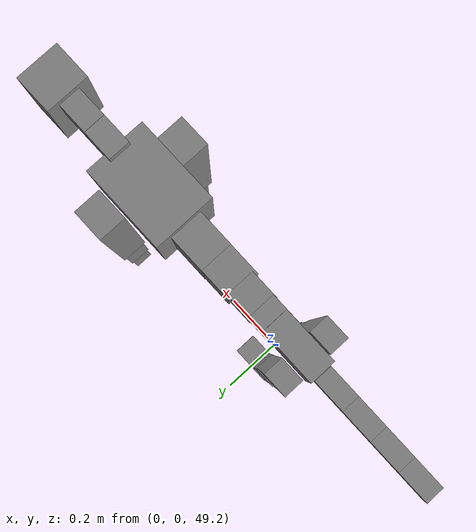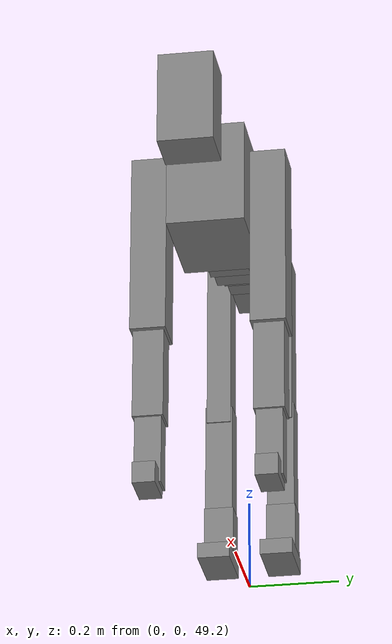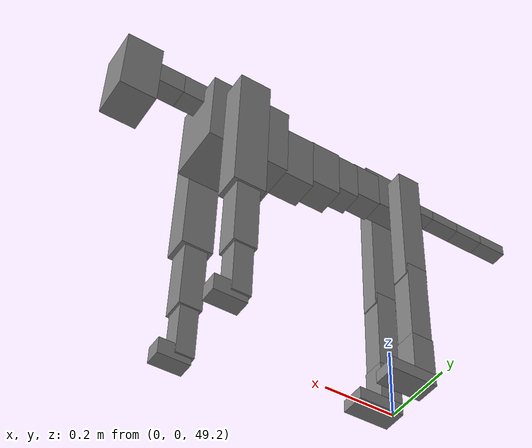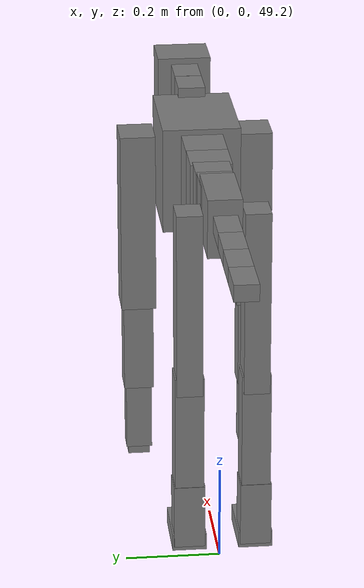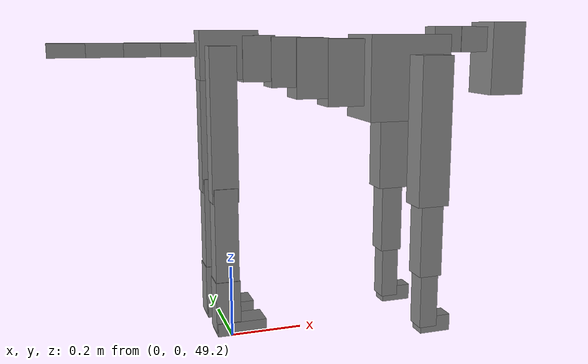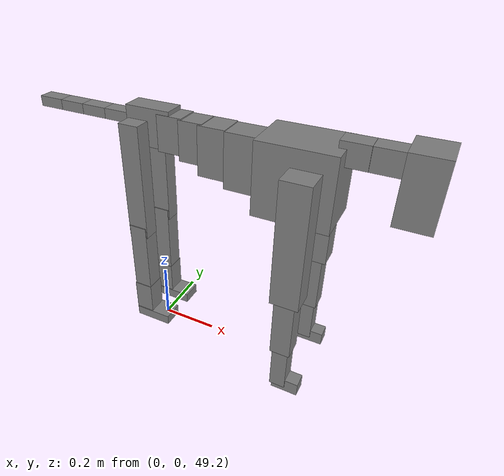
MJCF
<mujoco model="dog">

    <default>
        <joint armature="0.02" stiffness="1" damping="0.2" limited="true"/>
        <geom condim="3" friction="1 0.05 0.05" margin="0.01"/>
        <motor ctrllimited="true" ctrlrange="-1.0 1.0" forcelimited="true" gear="50"/>
    </default>

    <compiler inertiafromgeom="true" angle="radian"/>

    <option timestep="0.016" iterations="50" tolerance="1e-10" solver="Newton" jacobian="dense" cone="pyramidal"/>

    <size nconmax="20000" njmax="60000" nstack="5000000"/>
    <visual>
        <map force="0.1" zfar="30"/>
        <rgba haze="0.15 0.25 0.35 1"/>
        <quality shadowsize="2048"/>
        <global offwidth="800" offheight="800"/>
    </visual>

    <asset>
        <texture type="skybox" builtin="gradient" rgb1="0.3 0.5 0.7" rgb2="0 0 0" width="512" height="512"/>
        <texture name="texplane" type="2d" builtin="checker" rgb1=".2 .3 .4" rgb2=".1 0.15 0.2" width="512" height="512"
                 mark="cross" markrgb=".8 .8 .8"/>
        <texture name="texgeom" type="cube" builtin="flat" mark="cross" width="127" height="1278" rgb1="0.8 0.6 0.4"
                 rgb2="0.8 0.6 0.4" markrgb="1 1 1" random="0.01"/>

        <material name="matplane" reflectance="0.3" texture="texplane" texrepeat="1 1" texuniform="true"/>
        <material name="matgeom" texture="texgeom" texuniform="true" rgba="0.8 0.6 .4 1"/>
    </asset>

    <worldbody>
        <geom name="floor" pos="0 0 0" size="0 0 .25" type="plane" material="matplane" condim="3"/>

        <light directional="false" diffuse=".2 .2 .2" specular="0 0 0" pos="0 0 5" dir="0 0 -1" castshadow="false"/>
        <light mode="targetbodycom" target="torso" directional="false" diffuse=".8 .8 .8" specular="0.3 0.3 0.3"
               pos="0 0 4.0" dir="0 0 -1"/>

        <body name="root" pos="0 0 50">
            <freejoint name="root_1"/>
            <geom type="box" pos="0 0 -0.02" size="0.0774  0.0358  0.063" density="2030"/>

            <body name="spine1" pos="0.054 0 0">
                <joint name="spine1_y" axis="0 1 0" range="0 0.7" limited="true"/>
                <geom type="box" pos="0.02375 0 -0.03" size="0.04375  0.0375  0.05985" density="2030"/>

                <body name="spine2" pos="0.0612 0 0">
                    <joint name="spine2_y" axis="0 1 0" range="-0.15 0.15" limited="true"/>
                    <geom type="box" pos="0.03555  0  -0.04" size="0.04055  0.039  0.06615" density="2030"/>

                    <body name="spine3" pos="0.0730 0 0">
                        <joint name="spine3_y" axis="0 1 0" range="-0.15 0.15" limited="true"/>
                        <geom type="box" pos="0.03555  0  -0.057" size="0.04555  0.0445  0.081" density="2030"/>

                        <body name="spine4" pos="0.0780 0 0">
                            <joint name="spine4_y" axis="0 1 0" range="-0.15 0.15" limited="true"/>
                            <geom type="box" pos="0.05265  0  -0.07" size="0.05265  0.045  0.09135" density="2030"/>

                            <body name="torso" pos="0.1082 0 0">
                                <joint name="torso_y" axis="0 1 0" range="-0.15 0.15" limited="true"/>
                                <geom type="box" pos="0.11925  0  -0.085" size="0.11925  0.085  0.11745"
                                      density="2030"/>

                                <body name="neck1" pos="0.2160  0   0.0180">
                                    <joint name="neck1_y" axis="0 1 0" range="-1.2  -1" limited="true"/>
                                    <geom type="box" pos="0.0423  0  0" size="0.0423  0.03  0.036" density="2325"/>

                                    <body name="neck2" pos="0.0853  0  0">
                                        <joint name="neck2_y" axis="0 1 0" range="0.1  0" limited="true"/>
                                        <geom type="box" pos="0.0423  0  0" size="0.0423  0.03  0.036" density="2325"/>

                                        <body name="head" pos="0.0853  0  0">
                                            <joint name="head_y" axis="0 1 0" range="-0.3  -0.2" limited="true"/>
                                            <geom type="box" pos="0.0531  0  -0.055" size="0.0531  0.06  0.1044"
                                                  density="4030"/>

                                        </body>
                                    </body>
                                </body>

                                <body name="front_shoulder" pos="0.156  0   -0.0480">
                                    <joint name="front_shoulder_y" axis="0 1 0" range="-1 1.5" limited="true"/>
                                    <geom type="box" pos="0 0.13 -0.1779" size="0.0455  0.0389  0.2046" density="1158"/>
                                    <geom type="box" pos="0 -0.13 -0.1779" size="0.0455  0.0389  0.2046"
                                          density="1158"/>

                                    <body name="front_elbow" pos="0  0  -0.3558">
                                        <joint name="front_elbow_y" axis="0 1 0" range="-2 0" limited="true"/>
                                        <geom type="box" pos="0 0.13 -0.1137" size="0.0327  0.0334  0.1137"
                                              density="1081"/>
                                        <geom type="box" pos="0 -0.13 -0.1137" size="0.0327  0.0334  0.1137"
                                              density="1081"/>

                                        <body name="front_wrist" pos="0  0  -0.2274">
                                            <joint name="front_wrist_y" axis="0 1 0" range="-0.2 0" limited="true"/>
                                            <geom type="box" pos="0 0.13 -0.0689" size="0.0261  0.0290  0.0820"
                                                  density="1664"/>
                                            <geom type="box" pos="0 -0.13 -0.0689" size="0.0261  0.0290  0.0820"
                                                  density="1664"/>

                                            <body name="front_finger_end" pos="0  0  -0.1378">
                                                <joint name="front_finger_y" axis="0 1 0" range="-0.4 1"
                                                       limited="true"/>
                                                <geom type="box" pos="0.0246  0.13  -0.0088"
                                                      size="0.0451  0.0246  0.0238" density="1515"/>
                                                <geom type="box" pos="0.0246  -0.13  -0.0088"
                                                      size="0.0451  0.0246  0.0238" density="1515"/>

                                            </body>

                                        </body>
                                    </body>
                                </body>

                            </body>
                        </body>
                    </body>
                </body>
            </body>

            <body name="back_hip" pos="-0.03 0 -0.018">
                <joint name="back_hip_y" axis="0 1 0" range="-1.5 0.3" limited="true"/>
                <geom type="box" pos="0 0.07 -0.1770" size="0.0348  0.0273  0.1998" density="1154"/>
                <geom type="box" pos="0 -0.07 -0.1770" size="0.0348  0.0273  0.1998" density="1154"/>

                <body name="back_knee" pos="0  0  -0.3540">
                    <joint name="back_knee_y" axis="0 1 0" range="0 2.8" limited="true"/>
                    <geom type="box" pos="0 0.07 -0.1224" size="0.0311  0.0306  0.1379" density="1227"/>
                    <geom type="box" pos="0 -0.07 -0.1224" size="0.0311  0.0306  0.1379" density="1227"/>

                    <body name="back_ankle" pos="0  0  -0.2448">
                        <joint name="back_ankle_y" axis="0 1 0" range="-2.2 0" limited="true"/>
                        <geom type="box" pos="0 0.07 -0.0583" size="0.0327  0.0327  0.0695" density="1284"/>
                        <geom type="box" pos="0 -0.07 -0.0583" size="0.0327  0.0327  0.0695" density="1284"/>

                        <body name="back_toe_end" pos="0  0  -0.1165">
                            <joint name="back_toe_y" axis="0 1 0" range="-0.4 1" limited="true"/>
                            <geom type="box" pos="0.0359  0.07  -0.0027" size="0.0657  0.0359  0.0177" density="1515"/>
                            <geom type="box" pos="0.0359  -0.07  -0.0027" size="0.0657  0.0359  0.0177" density="1515"/>

                        </body>
                    </body>
                </body>
            </body>

            <body name="tail1" pos="-0.074 0 -0.006">
                <joint name="tail1_y" axis="0 1 0" range="-0.2 0.2" limited="true"/>
                <geom type="box" pos="-0.0536  0  0" size="0.045  0.025  0.0175" density="1587"/>

                <body name="tail2" pos="-0.09 0 0">
                    <joint name="tail2_y" axis="0 1 0" range="-0.2 0.2" limited="true"/>
                    <geom type="box" pos="-0.0536  0  0" size="0.045  0.025  0.0175" density="1587"/>

                    <body name="tail3" pos="-0.09 0 0">
                        <joint name="tail3_y" axis="0 1 0" range="-0.2 0.2" limited="true"/>
                        <geom type="box" pos="-0.0536  0  0" size="0.045  0.025  0.0175" density="1587"/>

                        <body name="tail4" pos="-0.09 0 0">
                            <joint name="tail4_y" axis="0 1 0" range="-0.2 0.2" limited="true"/>
                            <geom type="box" pos="-0.0536  0  0" size="0.045  0.025  0.0175" density="1587"/>

                        </body>
                    </body>
                </body>
            </body>
        </body>
    </worldbody>

    <actuator>
        <motor joint="spine1_y" forcerange="-150 150     "/>
        <motor joint="spine2_y" forcerange="-150 150     "/>
        <motor joint="spine3_y" forcerange="-150 150     "/>
        <motor joint="spine4_y" forcerange="-150 150     "/>
        <motor joint="torso_y" forcerange="-150 150     "/>
        <motor joint="neck1_y" forcerange="-100 100       "/>
        <motor joint="neck2_y" forcerange="-100 100       "/>
        <motor joint="head_y" forcerange="-150 150       "/>
        <motor joint="front_shoulder_y" forcerange="-168.74 190.55"/>
        <motor joint="front_elbow_y" forcerange="-197.63 145.62"/>
        <motor joint="front_wrist_y" forcerange="-145.19 86.59"/>
        <motor joint="front_finger_y" forcerange="-68.75 22.34"/>
        <motor joint="back_hip_y" forcerange="-343.49 220.25"/>
        <motor joint="back_knee_y" forcerange="-328.11 317.18"/>
        <motor joint="back_angle_y" forcerange="-203.91 219.79"/>
        <motor joint="back_toe_y" forcerange="-117.20 89.71"/>
        <motor joint="tail1_y" forcerange="-50 50     "/>
        <motor joint="tail2_y" forcerange="-50 50     "/>
        <motor joint="tail3_y" forcerange="-50 50     "/>
        <motor joint="tail4_y" forcerange="-50 50     "/>
    </actuator>
</mujoco>
